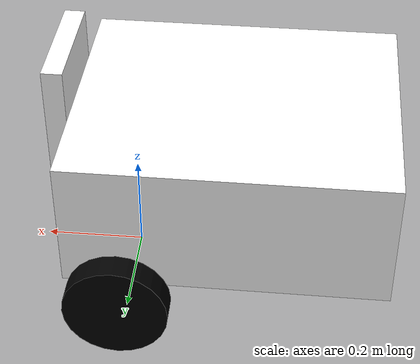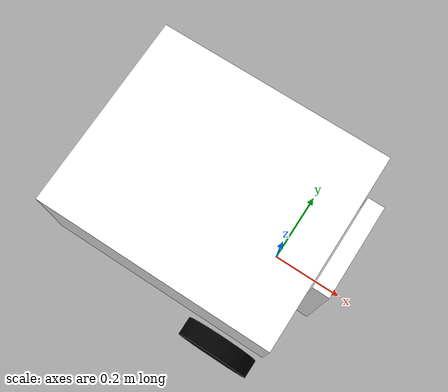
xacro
<?xml version="1.0"?>
<robot xmlns:xacro="http://www.ros.org/wiki/xacro" name="robot">

        <xacro:include filename="robot_core.xacro"/>

        <xacro:include filename="ros2_control.xacro"/>

</robot>

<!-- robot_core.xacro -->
<robot xmlns:xacro="http://www.ros.org/wiki/xacro"  name="robot">

    <xacro:include filename="inertial_macros.xacro"/>

    <!-- Define colors-->
    <material name="white">
        <color rgba="1 1 1 1"/>
    </material>

    <material name="orange">
        <color rgba="1 0.3 0.1 1"/>
    </material>

    <material name="blue">
        <color rgba="0.2 0.2 1 1"/>
    </material>

    <material name="black">
        <color rgba="0 0 0 1"/>
    </material>

    <!-- BASE LINK -->

    <link name="base_link">
    </link>

    <!-- BASE FOOTPRINT LINK -->

    <joint name="base_footprint_joint" type="fixed">
        <parent link="base_link"/>
        <child link="base_footprint"/>
        <origin xyz="0 0 0" rpy="0 0 0"/>
    </joint>

    <link name="base_footprint">
    </link>

    <!-- CHASSIS LINK -->

    <joint name="chassis_joint" type="fixed">
        <parent link="base_link"/>
        <child link="chassis"/>
        <origin xyz="-0.2 0 0.25"/>
    </joint>

    <link name="chassis">
        <visual>
            <origin xyz="0 0 0"/>
            <geometry>
                <box size="0.62 0.52 0.26"/>
            </geometry>
            <material name="white"/>
        </visual>
        <collision>
            <origin xyz="0 0 0"/>
            <geometry>
                <box size="0.62 0.52 0.26"/>
            </geometry>
            <material name="white"/>
        </collision>
        <xacro:inertial_box mass="10" x="0.62" y="0.52" z="0.26">
            <origin xyz ="0 0 0" rpy="0 0 0"/>
        </xacro:inertial_box>
    </link>

    <gazebo reference="chassis">
        <material>Gazebo/White</material>
    </gazebo>

    <!-- LEFT WHEEL LINK -->

    <joint name="left_wheel_joint" type="continuous">
        <parent link="base_link"/>
        <child link="left_wheel"/>
        <origin xyz="0 0.3 0.1" rpy="-${pi/2} 0 0"/>
        <axis xyz="0 0 1"/>
    </joint>

    <link name="left_wheel">
        <visual>
            <geometry>
                <cylinder radius="0.1" length="0.05"/>
            </geometry>
            <material name="black"/>
        </visual>
        <collision>
            <geometry>
                <sphere radius="0.1"/>
            </geometry>
            <material name="black"/>
        </collision>
        <xacro:inertial_cylinder mass="1" length="0.05" radius="0.1">
            <origin xyz="0 0 0" rpy="0 0 0"/>
        </xacro:inertial_cylinder>
    </link>

    <gazebo reference="left_wheel">
        <material>Gazebo/Black</material>
    </gazebo>

    <!-- RIGHT WHEEL LINK -->

    <joint name="right_wheel_joint" type="continuous">
        <parent link="base_link"/>
        <child link="right_wheel"/>
        <origin xyz="0 -0.3 0.1" rpy="${pi/2} 0 0"/>
        <axis xyz="0 0 -1"/>
    </joint>

    <link name="right_wheel">
        <visual>
            <geometry>
                <cylinder radius="0.1" length="0.05"/>
            </geometry>
            <material name="black"/>
        </visual>
        <collision>
            <geometry>
                <sphere radius="0.1"/>
            </geometry>
            <material name="black"/>
        </collision>
        <xacro:inertial_cylinder mass="1" length="0.05" radius="0.1">
            <origin xyz="0 0 0" rpy="0 0 0"/>
        </xacro:inertial_cylinder>
    </link>

    <gazebo reference="right_wheel">
        <material>Gazebo/Black</material>
    </gazebo>

    <!-- CASTER WHEEL LINK -->

    <joint name="caster_wheel_joint"    type="fixed">
        <parent link="chassis"/>
        <child link="caster_wheel"/>
        <origin xyz="-0.2 0 -0.15"/>
    </joint>

    <link name="caster_wheel">
        <visual>
            <geometry>
                <sphere radius="0.1"/>
            </geometry>
            <material name="black"/>
        </visual>
        <collision>
            <geometry>
                <sphere radius="0.1"/>
            </geometry>
            <material name="black"/>
        </collision>
        <xacro:inertial_sphere mass="0.3" radius="0.1">
            <origin xyz=" 0 0 0" rpy="0 0 0"/>
        </xacro:inertial_sphere>
    </link>

    <gazebo reference="caster_wheel">
        <material>Gazebo/Black</material>
        <mu1 value="0.001"/>
        <mu2 value="0.001"/>
    </gazebo>

    <!-- SENSOR-STAND LINK -->
    <!-- replace by camera seperate camera.xacro file later -->

    <joint name="sensors_joint" type="fixed">
        <parent link="chassis"/>
        <child link="sensors_stand"/>
        <origin xyz="0.33 0 0.052"/>
    </joint>

    <link name="sensors_stand">
        <visual>
            <origin xyz="0 0 0"/>
            <geometry>
                <box size="0.04 0.225 0.365"/>
            </geometry>
            <material name="white"/>
        </visual>
        <collision>
            <origin xyz="0 0 0"/>
            <geometry>
                <box size="0.225 0.04 0.4"/>
            </geometry>
            <material name="white"/>
        </collision>
        <xacro:inertial_box mass="1" x="0.04" y="0.225" z="0.365">
            <origin xyz ="0 0 0" rpy="0 0 0"/>
        </xacro:inertial_box>
    </link>

    <gazebo reference="sensors_stand">
        <material>Gazebo/White</material>
    </gazebo>

</robot>
